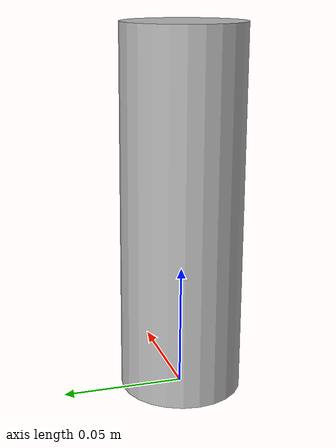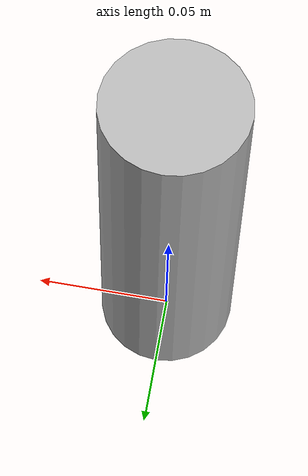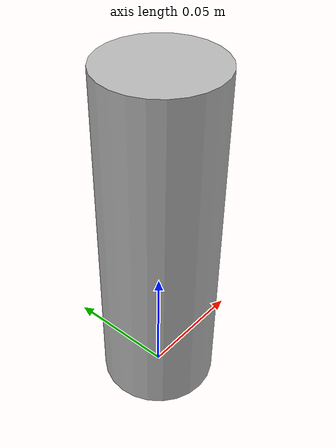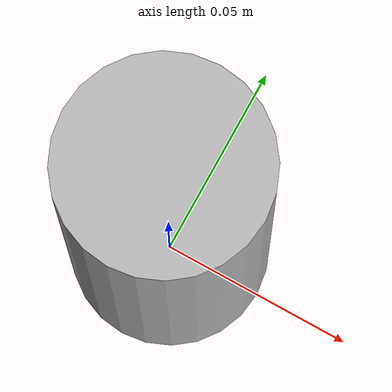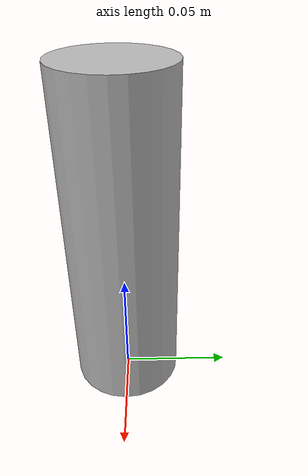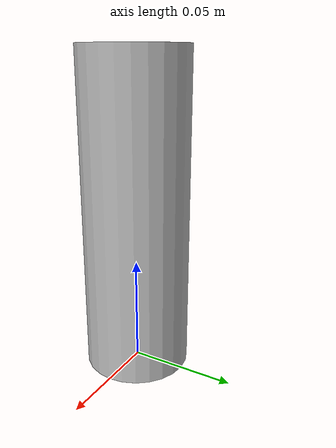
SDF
<sdf version="1.4">
  <model name="cocacola">
    <static>0</static>
    <link name="cocacola_link">
      <inertial>
        <mass>0.25</mass>
        <inertia>
          <ixx>0.000000</ixx>
          <ixy>0.000000</ixy>
          <ixz>0.000000</ixz>
          <iyy>0.000000</iyy>
          <iyz>0.000000</iyz>
          <izz>0.000000</izz>
        </inertia>
      </inertial>
      <collision name="collision">
        <pose>0 0 0.075 3.1416 0 0</pose>
        <geometry>
          <cylinder>
            <radius>0.025</radius>
            <length>0.15</length>
          </cylinder>
        </geometry>
        <surface>
          <bounce />
          <friction>
            <ode>
              <mu>60.0</mu>
              <mu2>60.0</mu2>
            </ode>
          </friction>
          <contact>
            <ode />
          </contact>
        </surface>
      </collision>
      <visual name="visual">
        <pose>0 0 0.075 3.1416 0 0</pose>
        <geometry>
          <cylinder>
            <radius>0.025</radius>
            <length>0.15</length>
          </cylinder>
        </geometry>
        <material>
          <script>
	      <uri>model://cocacola/material/scripts</uri>
	      <uri>model://cocacola/material/textures</uri>
              <name>Custom/cocacola</name>
          </script>
        </material>
      </visual>
      <velocity_decay>
        <linear>0.000000</linear>
        <angular>0.000000</angular>
      </velocity_decay>
      <self_collide>0</self_collide>
      <kinematic>0</kinematic>
      <gravity>1</gravity>
    </link>
    <plugin name="p3d_base_controller" filename="libgazebo_ros_p3d.so">
        <!-- Link to which the plugin is attached -->
        <bodyName>cocacola_link</bodyName>
        <!-- ROS topic name to publish the pose information -->
        <topicName>cocacola</topicName>
        <!-- Frame name for the TF -->
        <frameName>world</frameName>
        <!-- Update rate in Hz -->
        <updateRate>30.0</updateRate>
        <!-- Gaussian noise magnitude -->
        <gaussianNoise>0.01</gaussianNoise>
    </plugin>
  </model>
</sdf>
